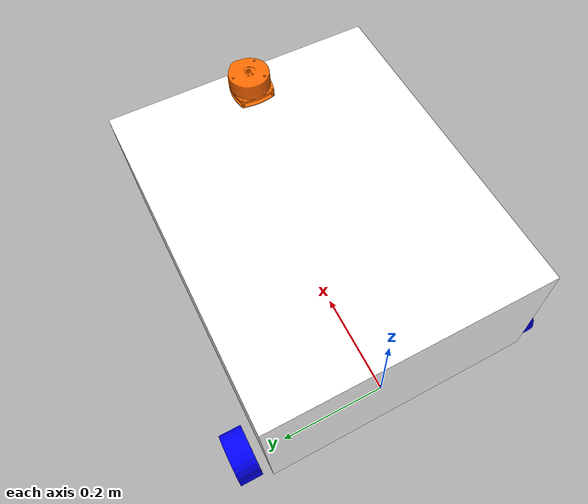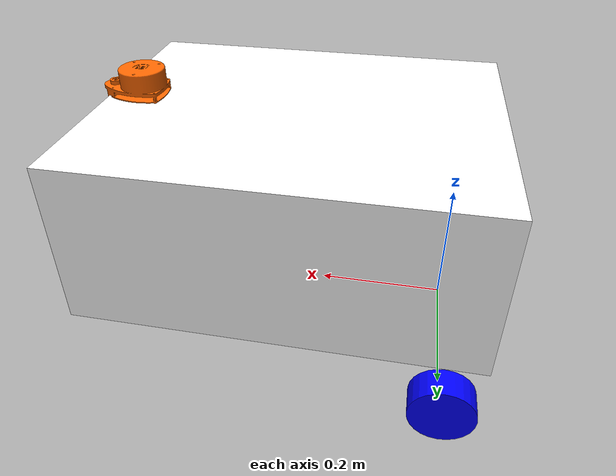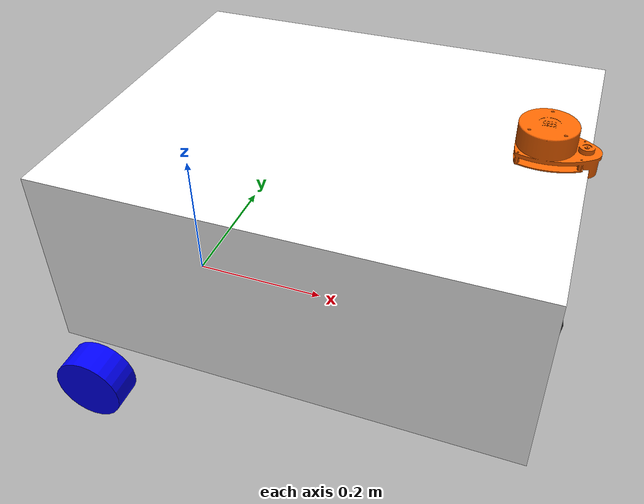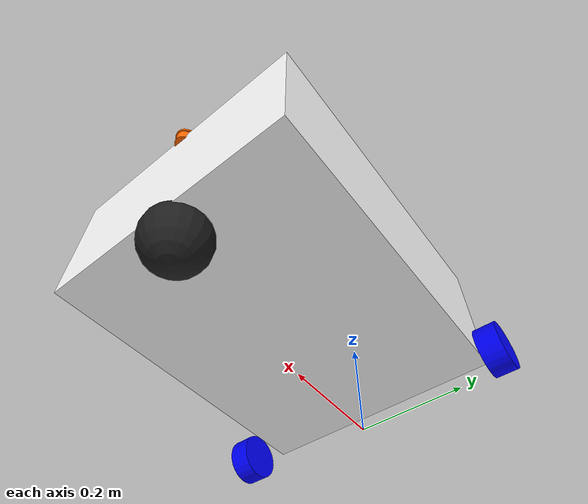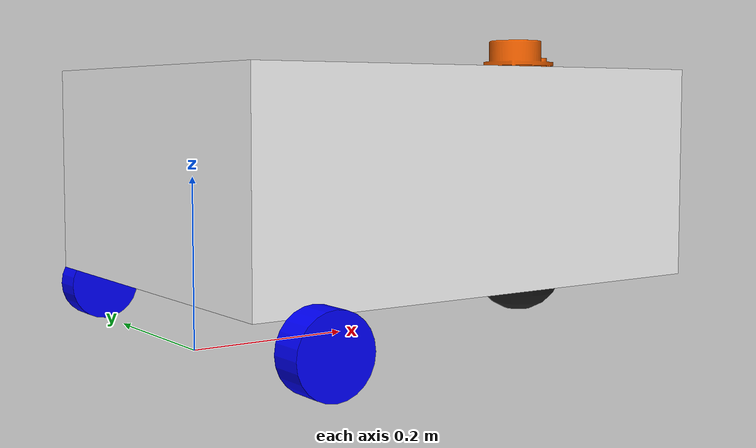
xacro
<?xml version="1.0"?>
<robot  xmlns:xacro="http://www.ros.org/wiki/xacro" name="robot">

    <xacro:include filename="base.urdf.xacro" />
    <xacro:include filename="laser.urdf.xacro" />

    <xacro:include filename="inertial_macros.xacro" />
    <xacro:include filename="mylaser.urdf.xacro" />
</robot>

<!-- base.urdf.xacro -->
<robot xmlns:xacro="http://www.ros.org/wiki/xacro" name="robot">

    <xacro:include filename="inertial_macros.xacro" />

    <material name="Black">
        <color rgba="0 0 0 0.95"/>
    </material>
    <material name="White">
        <color rgba="1 1 1 1"/>
    </material>
    <material name="Blue">
        <color rgba="0 0 1 1"/>
    </material>
    <material name="Yellow">
        <color rgba="1 0.4 0 1"/>
    </material>

    <link name="base_footprint">

    </link>

    <link name="base_link">

    </link>

    <link name="imu_link">

    </link>

    <joint name="imu_joint" type="fixed">
        <parent link="base_link"/>
        <child link="imu_link"/>
        <origin xyz="0 0 0.05" rpy="0 0 0"/>
    </joint>

    <joint name="base_footprint_joint" type="fixed">
        <parent link="base_footprint"/>
        <child link="base_link"/>
        <origin xyz="0 0 0.074" rpy="0 0 0"/>
    </joint>

    <joint name ="chassis_joint" type="fixed">
        <parent link="base_link"/>
        <child link="chassis"/>
        <origin xyz="-0.06 0 0"/>
    </joint>

    <link name="chassis">

        <visual>
            <origin xyz="0.3 0 0.125"/>
            <geometry>
                <box size="0.6 0.485 0.25"/>
            </geometry>
            <material name="White"/>
        </visual>

        <collision>
            <origin xyz="0.3 0 0.125"/>
            <geometry>
                <box size="0.6 0.485 0.25"/>
            </geometry>
        </collision>

        <xacro:inertial_box mass="5.0" x="0.6" y="0.485" z="0.25">
            <origin xyz="0.3 0 0.125" rpy="0 0 0"/>
        </xacro:inertial_box>

    </link>
    <gazebo reference="chassis">
        <material>Gazebo/White</material>
    </gazebo>

    <joint name="caster_wheel_joint" type="fixed">
        <parent link="chassis"/>
        <child link="caster_wheel"/>
        <origin xyz="0.555 0 -0.014" rpy="0 0 0"/>
    </joint>

    <link name="caster_wheel">
        <visual>
            <geometry>
                <sphere radius="0.06" />
            </geometry>
            <material name="black"/>
        </visual>

        <collision>
            <geometry>
                <sphere radius="0.06"/>
            </geometry>
        </collision>

        <xacro:inertial_sphere mass="0.5"  radius="0.06">
            <origin xyz="0 0 0" rpy="0 0 0"/>
        </xacro:inertial_sphere>

    </link>
    <gazebo reference="caster_wheel">
        <material>Gazebo/Black</material>
        <mu1 value="0.001"/>
        <mu2 value="0.001"/>
    </gazebo>

    <joint name="left_wheel_joint" type="continuous">
        <parent link="base_link" />
        <child link="left_wheel" />
        <origin xyz="0.0 0.2775 -0.029" rpy="-1.5708 0 0"/>
        <axis xyz="0 0 1"/>
    </joint>

    <link name="left_wheel">
        <visual>
            <origin rpy="0 0 0" xyz="0 0 0" />
            <geometry>
                <cylinder radius="0.045" length="0.04"/>
            </geometry>
            <material name="Blue"/>
        </visual>

        <collision>
            <origin rpy="0 0 0" xyz="0 0 0" />
            <geometry>
                <cylinder radius="0.045" length="0.04"/>
            </geometry>
        </collision>

        <xacro:inertial_cylinder mass="0.5" length="0.04" radius="0.045">
            <origin xyz="0 0 0" rpy="0 0 0"/>
        </xacro:inertial_cylinder>

    </link>
    <gazebo reference="left_wheel">
        <material>Gazebo/Blue</material>
    </gazebo>

    <joint name="right_wheel_joint" type="continuous">
        <parent link="base_link" />
        <child link="right_wheel" />
        <origin xyz="0.0 -0.2775 -0.029" rpy="1.5708 0 0"/>
        <axis xyz="0 0 -1"/>
    </joint>

    <link name="right_wheel">
        <visual>
            <origin rpy="0 0 0" xyz="0 0 0" />
            <geometry>
                <cylinder radius="0.045" length="0.04"/>
            </geometry>
            <material name="Blue"/>
        </visual>

        <collision>
            <origin rpy="0 0 0" xyz="0 0 0" />
            <geometry>
                <cylinder radius="0.045" length="0.04"/>
            </geometry>
        </collision>

        <xacro:inertial_cylinder mass="0.5" length="0.04" radius="0.045">
            <origin xyz="0 0 0" rpy="0 0 0"/>
        </xacro:inertial_cylinder>

    </link>
    <gazebo reference="right_wheel">
        <material>Gazebo/Blue</material>
    </gazebo>

    <link name="camera_link">

    </link>

    <joint name="camera_to_base_joint" type="fixed">
        <parent link="base_link"/>
        <child link="camera_link"/>
        <origin xyz="0.24 0 0.62" rpy="0 0 0"/>
    </joint>

    <link name="camera_color_frame"/>
    <link name="camera_color_optical_frame"/>

    <joint name="camera_color_joint" type="fixed">
        <parent link="camera_link"/>
        <child link="camera_color_frame"/>
        <origin xyz="0 0 0" rpy="0 0 0"/>
    </joint>

    <joint name="camera_color_optical_joint" type="fixed">
        <parent link="camera_color_frame"/>
        <child link="camera_color_optical_frame"/>
        <origin xyz="0 0 0" rpy="-1.5708 0 -1.5708"/>
    </joint>

    <link name="camera_depth_frame"/>
    <link name="camera_depth_optical_frame"/>

    <joint name="camera_depth_joint" type="fixed">
        <parent link="camera_link"/>
        <child link="camera_depth_frame"/>
        <origin xyz="0 0 0" rpy="0 0 0"/>
    </joint>

    <joint name="camera_depth_optical_joint" type="fixed">
        <parent link="camera_depth_frame"/>
        <child link="camera_depth_optical_frame"/>
        <origin xyz="0 0 0" rpy="-1.5708 0 -1.5708"/>
    </joint>

    <link name="camera_ir_frame"/>
    <link name="camera_ir_optical_frame"/>

    <joint name="camera_ir_joint" type="fixed">
        <parent link="camera_link"/>
        <child link="camera_ir_frame"/>
        <origin xyz="0 0 0" rpy="0 0 0"/>
    </joint>

    <joint name="camera_ir_optical_joint" type="fixed">
        <parent link="camera_ir_frame"/>
        <child link="camera_ir_optical_frame"/>
        <origin xyz="0 0 0" rpy="-1.5708 0 -1.5708"/>
    </joint>

</robot>

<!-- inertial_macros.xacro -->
<robot xmlns:xacro="http://www.ros.org/wiki/xacro" name="robot">

    <!-- Specify some standard inertial calculations https://en.wikipedia.org/wiki/List_of_moments_of_inertia -->
    <!-- These make use of xacro's mathematical functionality -->

    <xacro:macro name="inertial_sphere" params="mass radius *origin">
        <inertial>
            <xacro:insert_block name="origin"/>
            <mass value="${mass}" />
            <inertia ixx="${(2/5) * mass * (radius*radius)}" ixy="0.0" ixz="0.0"
                    iyy="${(2/5) * mass * (radius*radius)}" iyz="0.0"
                    izz="${(2/5) * mass * (radius*radius)}" />
        </inertial>
    </xacro:macro>

    <xacro:macro name="inertial_box" params="mass x y z *origin">
        <inertial>
            <xacro:insert_block name="origin"/>
            <mass value="${mass}" />
            <inertia ixx="${(1/12) * mass * (y*y+z*z)}" ixy="0.0" ixz="0.0"
                    iyy="${(1/12) * mass * (x*x+z*z)}" iyz="0.0"
                    izz="${(1/12) * mass * (x*x+y*y)}" />
        </inertial>
    </xacro:macro>

    <xacro:macro name="inertial_cylinder" params="mass length radius *origin">
        <inertial>
            <xacro:insert_block name="origin"/>
            <mass value="${mass}" />
            <inertia ixx="${(1/12) * mass * (3*radius*radius + length*length)}" ixy="0.0" ixz="0.0"
                    iyy="${(1/12) * mass * (3*radius*radius + length*length)}" iyz="0.0"
                    izz="${(1/2) * mass * (radius*radius)}" />
        </inertial>
    </xacro:macro>

</robot>

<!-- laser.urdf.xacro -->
<robot name="my_sensors" xmlns:xacro="http://wiki.ros.org/xacro">

    <link name="laser">

        <visual>
        <origin rpy="0 0 -1.5708" xyz="0 0 0"/>
        <geometry>
            <mesh filename="package://bot_demo/stl/rplidar.stl" scale="0.001 0.001 0.001"/>
        </geometry>
        <material name="Yellow"/>
        </visual>

        <collision>
        <origin rpy="0 0 0" xyz="0 0 0"/>
        <geometry>
            <mesh filename="package://bot_demo/stl/rplidar.stl" scale="0.001 0.001 0.001"/>
        </geometry>
        </collision>

    </link>
    <gazebo reference="laser">
        <material>Gazebo/Yellow</material>
    </gazebo>

    <joint name="laser_joint" type="fixed">
        <origin xyz="0.555 0 0.275" rpy="0 0 0" />
        <parent link="chassis" />
        <child link="laser" />
    </joint>

</robot>
